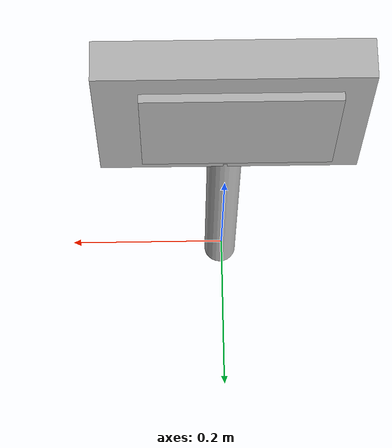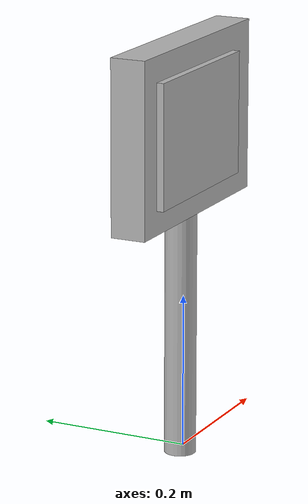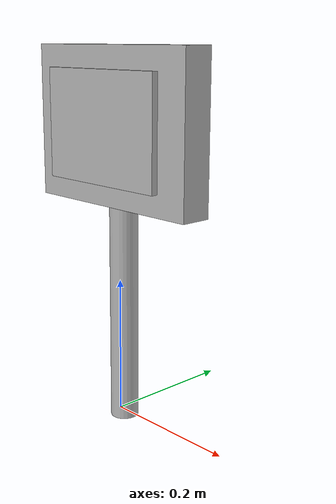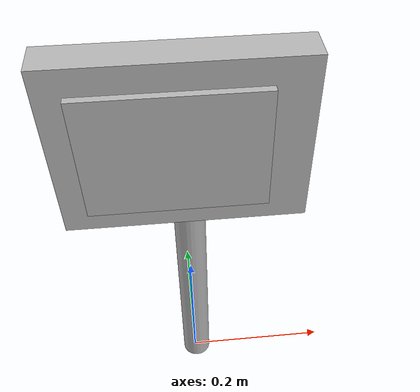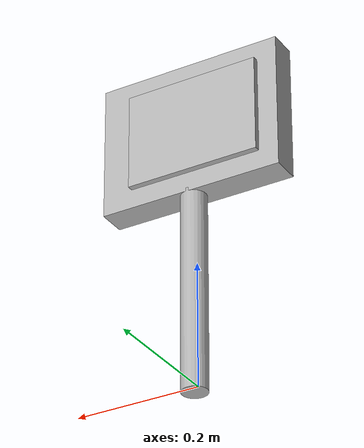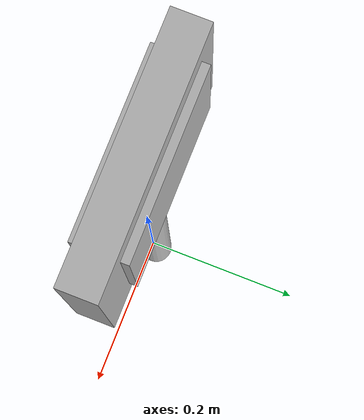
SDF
<?xml version='1.0'?>
<sdf version='1.7'>
  <model name='letrero_fresas_II'>
    <link name='link_0'>
      <inertial>
        <mass>0.0543151</mass>
        <inertia>
          <ixx>4.90351e-06</ixx>
          <ixy>0</ixy>
          <ixz>0</ixz>
          <iyy>4.90351e-06</iyy>
          <iyz>0</iyz>
          <izz>1.12837e-07</izz>
        </inertia>
        <pose>0 0 0 0 -0 0</pose>
      </inertial>
      <pose>0.002515 0.005109 0.153562 0 -0 0</pose>
      <self_collide>0</self_collide>
      <enable_wind>0</enable_wind>
      <kinematic>0</kinematic>
      <visual name='visual'>
        <pose>0 0 0 0 -0 0</pose>
        <geometry>
          <cylinder>
            <radius>0.0203836</radius>
            <length>0.327243</length>
          </cylinder>
        </geometry>
        <material>
          <lighting>1</lighting>
          <script>
            <uri>model://letrero_fresas_II/madera/scripts</uri>
            <uri>model://letrero_fresas_II/madera/textures</uri>
            <name>textur/madera</name>
          </script>
          <shader type='pixel'/>
          <emissive>0 0 0 1</emissive>
        </material>
        <transparency>0</transparency>
        <cast_shadows>1</cast_shadows>
      </visual>
      <collision name='collision'>
        <laser_retro>0</laser_retro>
        <max_contacts>10</max_contacts>
        <pose>0 0 0 0 -0 0</pose>
        <geometry>
          <cylinder>
            <radius>0.020384</radius>
            <length>0.327243</length>
          </cylinder>
        </geometry>
        <surface>
          <friction>
            <ode>
              <mu>1</mu>
              <mu2>1</mu2>
              <fdir1>0 0 0</fdir1>
              <slip1>0</slip1>
              <slip2>0</slip2>
            </ode>
            <torsional>
              <coefficient>1</coefficient>
              <patch_radius>0</patch_radius>
              <surface_radius>0</surface_radius>
              <use_patch_radius>1</use_patch_radius>
              <ode>
                <slip>0</slip>
              </ode>
            </torsional>
          </friction>
          <bounce>
            <restitution_coefficient>0</restitution_coefficient>
            <threshold>1e+06</threshold>
          </bounce>
          <contact>
            <collide_without_contact>0</collide_without_contact>
            <collide_without_contact_bitmask>1</collide_without_contact_bitmask>
            <collide_bitmask>1</collide_bitmask>
            <ode>
              <soft_cfm>0</soft_cfm>
              <soft_erp>0.2</soft_erp>
              <kp>1e+13</kp>
              <kd>1</kd>
              <max_vel>0.01</max_vel>
              <min_depth>0</min_depth>
            </ode>
            <bullet>
              <split_impulse>1</split_impulse>
              <split_impulse_penetration_threshold>-0.01</split_impulse_penetration_threshold>
              <soft_cfm>0</soft_cfm>
              <soft_erp>0.2</soft_erp>
              <kp>1e+13</kp>
              <kd>1</kd>
            </bullet>
          </contact>
        </surface>
      </collision>
    </link>
    <link name='link_1'>
      <inertial>
        <mass>0.00299633</mass>
        <inertia>
          <ixx>1.27855e-05</ixx>
          <ixy>0</ixy>
          <ixz>0</ixz>
          <iyy>3.42923e-05</iyy>
          <iyz>0</iyz>
          <izz>2.25402e-05</izz>
        </inertia>
        <pose>0 0 0 0 -0 0</pose>
      </inertial>
      <pose>-0.001542 0.002452 0.422031 0 -0 0</pose>
      <self_collide>0</self_collide>
      <enable_wind>0</enable_wind>
      <kinematic>0</kinematic>
      <visual name='visual'>
        <pose>0 0 0 0 -0 0</pose>
        <geometry>
          <box>
            <size>0.296988 0.04549 0.221665</size>
          </box>
        </geometry>
        <material>
          <lighting>1</lighting>
          <script>
            <uri>model://letrero_fresas_II/madera/scripts</uri>
            <uri>model://letrero_fresas_II/madera/textures</uri>
            <name>textur/madera</name>
          </script>
          <shader type='pixel'/>
          <emissive>0 0 0 1</emissive>
        </material>
        <transparency>0</transparency>
        <cast_shadows>1</cast_shadows>
      </visual>
      <collision name='collision'>
        <laser_retro>0</laser_retro>
        <max_contacts>10</max_contacts>
        <pose>0 0 0 0 -0 0</pose>
        <geometry>
          <box>
            <size>0.296988 0.04549 0.221665</size>
          </box>
        </geometry>
        <surface>
          <friction>
            <ode>
              <mu>1</mu>
              <mu2>1</mu2>
              <fdir1>0 0 0</fdir1>
              <slip1>0</slip1>
              <slip2>0</slip2>
            </ode>
            <torsional>
              <coefficient>1</coefficient>
              <patch_radius>0</patch_radius>
              <surface_radius>0</surface_radius>
              <use_patch_radius>1</use_patch_radius>
              <ode>
                <slip>0</slip>
              </ode>
            </torsional>
          </friction>
          <bounce>
            <restitution_coefficient>0</restitution_coefficient>
            <threshold>1e+06</threshold>
          </bounce>
          <contact>
            <collide_without_contact>0</collide_without_contact>
            <collide_without_contact_bitmask>1</collide_without_contact_bitmask>
            <collide_bitmask>1</collide_bitmask>
            <ode>
              <soft_cfm>0</soft_cfm>
              <soft_erp>0.2</soft_erp>
              <kp>1e+13</kp>
              <kd>1</kd>
              <max_vel>0.01</max_vel>
              <min_depth>0</min_depth>
            </ode>
            <bullet>
              <split_impulse>1</split_impulse>
              <split_impulse_penetration_threshold>-0.01</split_impulse_penetration_threshold>
              <soft_cfm>0</soft_cfm>
              <soft_erp>0.2</soft_erp>
              <kp>1e+13</kp>
              <kd>1</kd>
            </bullet>
          </contact>
        </surface>
      </collision>
    </link>
    <link name='link_2'>
      <inertial>
        <mass>0.00173577</mass>
        <inertia>
          <ixx>4.23206e-06</ixx>
          <ixy>0</ixy>
          <ixz>0</ixz>
          <iyy>1.03921e-05</iyy>
          <iyz>0</iyz>
          <izz>7.37287e-06</izz>
        </inertia>
        <pose>0 0 0 0 -0 0</pose>
      </inertial>
      <pose>-0.010225 0.002657 0.421501 0 -0 0</pose>
      <self_collide>0</self_collide>
      <enable_wind>0</enable_wind>
      <kinematic>0</kinematic>
      <visual name='visual'>
        <pose>0 0 0 0 -0 0</pose>
        <geometry>
          <box>
            <size>0.216284 0.064749 0.15832</size>
          </box>
        </geometry>
        <material>
          <lighting>1</lighting>
          <script>
            <uri>model://letrero_fresas_II/materials/scripts</uri>
            <uri>model://letrero_fresas_II/materials/textures</uri>
            <name>textur/difres</name>
          </script>
          <shader type='pixel'/>
          <emissive>0 0 0 1</emissive>
        </material>
        <transparency>0</transparency>
        <cast_shadows>1</cast_shadows>
      </visual>
      <collision name='collision'>
        <laser_retro>0</laser_retro>
        <max_contacts>10</max_contacts>
        <pose>0 0 0 0 -0 0</pose>
        <geometry>
          <box>
            <size>0.216284 0.064749 0.15832</size>
          </box>
        </geometry>
        <surface>
          <friction>
            <ode>
              <mu>1</mu>
              <mu2>1</mu2>
              <fdir1>0 0 0</fdir1>
              <slip1>0</slip1>
              <slip2>0</slip2>
            </ode>
            <torsional>
              <coefficient>1</coefficient>
              <patch_radius>0</patch_radius>
              <surface_radius>0</surface_radius>
              <use_patch_radius>1</use_patch_radius>
              <ode>
                <slip>0</slip>
              </ode>
            </torsional>
          </friction>
          <bounce>
            <restitution_coefficient>0</restitution_coefficient>
            <threshold>1e+06</threshold>
          </bounce>
          <contact>
            <collide_without_contact>0</collide_without_contact>
            <collide_without_contact_bitmask>1</collide_without_contact_bitmask>
            <collide_bitmask>1</collide_bitmask>
            <ode>
              <soft_cfm>0</soft_cfm>
              <soft_erp>0.2</soft_erp>
              <kp>1e+13</kp>
              <kd>1</kd>
              <max_vel>0.01</max_vel>
              <min_depth>0</min_depth>
            </ode>
            <bullet>
              <split_impulse>1</split_impulse>
              <split_impulse_penetration_threshold>-0.01</split_impulse_penetration_threshold>
              <soft_cfm>0</soft_cfm>
              <soft_erp>0.2</soft_erp>
              <kp>1e+13</kp>
              <kd>1</kd>
            </bullet>
          </contact>
        </surface>
      </collision>
    </link>
    <joint name='link_0_JOINT_1' type='fixed'>
      <parent>link_0</parent>
      <child>link_1</child>
      <pose>0 0 0 0 -0 0</pose>
      <physics>
        <ode>
          <limit>
            <cfm>0</cfm>
            <erp>0.2</erp>
          </limit>
          <suspension>
            <cfm>0</cfm>
            <erp>0.2</erp>
          </suspension>
        </ode>
      </physics>
    </joint>
    <joint name='link_0_JOINT_2' type='fixed'>
      <parent>link_0</parent>
      <child>link_2</child>
      <pose>0 0 0 0 -0 0</pose>
      <physics>
        <ode>
          <limit>
            <cfm>0</cfm>
            <erp>0.2</erp>
          </limit>
          <suspension>
            <cfm>0</cfm>
            <erp>0.2</erp>
          </suspension>
        </ode>
      </physics>
    </joint>
    <static>1</static>
    <allow_auto_disable>1</allow_auto_disable>
  </model>
</sdf>
